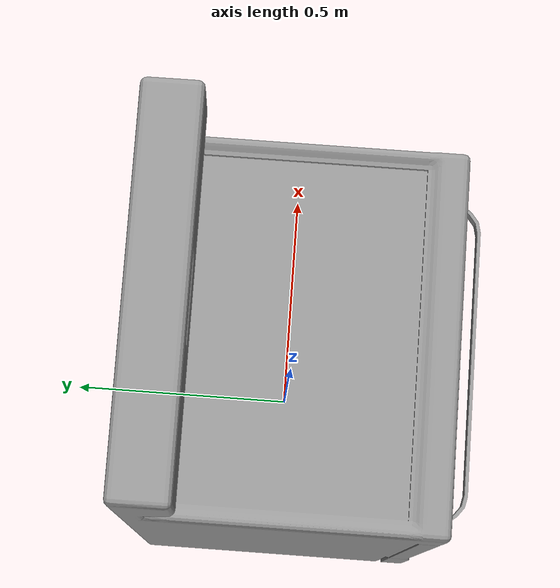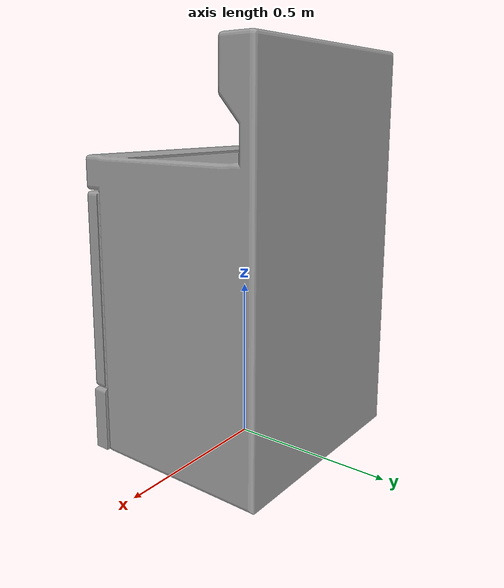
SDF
<?xml version='1.0'?>
<sdf version='1.6'>
  <model name='rai_oven'>
    <link name='link_1'>
      <pose frame=''>0 0 0 0 -0 0</pose>
      <visual name='visual'>
        <pose frame=''>0 0 0 1.57 -0 0</pose>
        <geometry>
          <mesh>
            <uri>model://rai_oven/meshes/rai_oven.STL</uri>
            <scale>1 1 1</scale>
          </mesh>
        </geometry>
        <material>
          <lighting>1</lighting>
          <script>
            <uri>file://media/materials/scripts/gazebo.material</uri>
            <name>Gazebo/Grey</name>
          </script>
          <ambient>0.85 0.85 0.85 1</ambient>
          <diffuse>0.85 0.85 0.85 1</diffuse>
          <specular>0.01 0.01 0.01 1</specular>
          <emissive>0 0 0 1</emissive>
          <shader type='vertex'>
            <normal_map>__default__</normal_map>
          </shader>
        </material>
        <cast_shadows>1</cast_shadows>
        <transparency>0</transparency>
      </visual>
      <collision name='collision'>
        <pose frame=''>0 0 0.45 0 -0 0</pose>
        <geometry>
          <box>
            <size>0.74 0.61 0.91</size>
          </box>
        </geometry>
      </collision>
    </link>
    <static>1</static>
    <allow_auto_disable>1</allow_auto_disable>
  </model>
</sdf>
